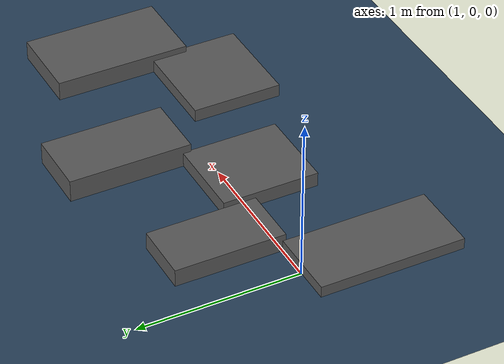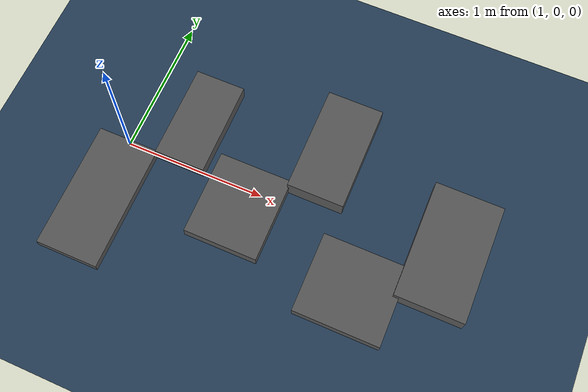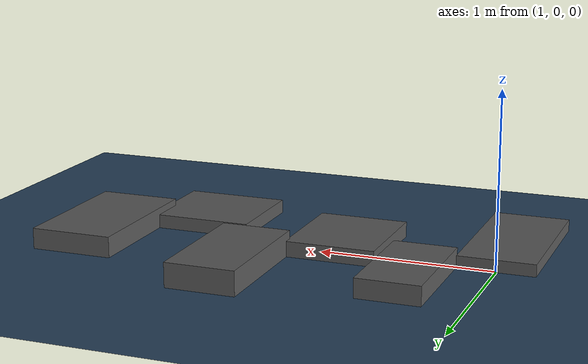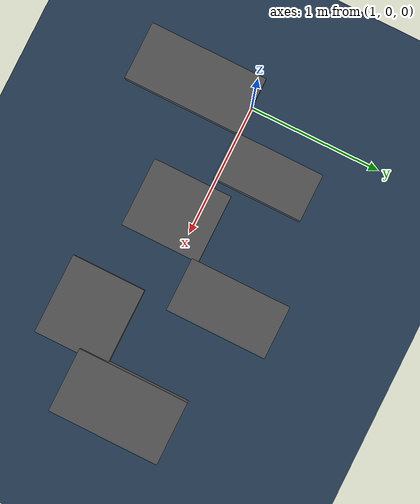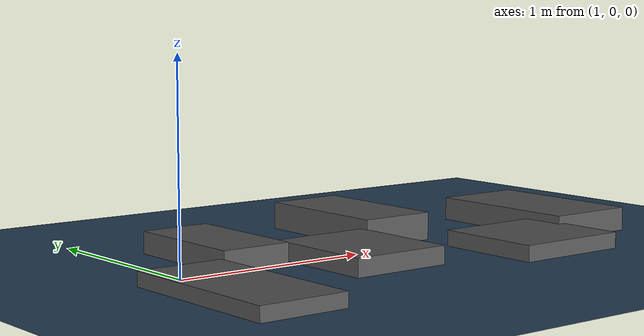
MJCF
<mujoco model="rough_terrain">
  <include file="materials.xml"/>

  <worldbody>
    <light name="key_light" directional="true" diffuse="0.9 0.9 0.9" specular="0.05 0.05 0.05" pos="2 3 4" dir="-0.4 -0.6 -1" castshadow="false" cutoff="255"/>
    <light name="fill_light" directional="true" diffuse="0.6 0.6 0.6" specular="0.02 0.02 0.02" pos="-2 3 3" dir="0.5 -0.5 -1" castshadow="false" cutoff="255"/>
    <light name="rim_light" directional="true" diffuse="0.35 0.35 0.35" specular="0.01 0.01 0.01" pos="0 -4 3" dir="0 0.7 -1" castshadow="false" cutoff="255"/>
    <light name="ambient_fill" directional="false" diffuse="0.4 0.4 0.4" specular="0 0 0" pos="0 0 3" castshadow="false" cutoff="255"/>
    <geom name="floor" size="0 0 0.05" friction="0.75 .1 .1" type="plane" material="groundplane"/>

    <geom name="rough_block_01" type="box" size="0.22 0.45 0.035" pos="1.0 -0.45 0.035" friction="0.9 .1 .1" material="rough_obstacles"/>
    <geom name="rough_block_02" type="box" size="0.18 0.34 0.055" pos="1.4 0.32 0.055" friction="0.9 .1 .1" material="rough_obstacles"/>
    <geom name="rough_block_03" type="box" size="0.26 0.30 0.045" pos="1.9 -0.15 0.045" friction="0.9 .1 .1" material="rough_obstacles"/>
    <geom name="rough_block_04" type="box" size="0.20 0.38 0.070" pos="2.35 0.48 0.070" friction="0.9 .1 .1" material="rough_obstacles"/>
    <geom name="rough_block_05" type="box" size="0.30 0.28 0.040" pos="2.8 -0.38 0.040" friction="0.9 .1 .1" material="rough_obstacles"/>
    <geom name="rough_block_06" type="box" size="0.24 0.42 0.060" pos="3.3 0.10 0.060" friction="0.9 .1 .1" material="rough_obstacles"/>
  </worldbody>
</mujoco>

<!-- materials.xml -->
<mujoco model="scene_materials">
  <asset>
    <texture type="skybox" builtin="flat" rgb1="0 0 0" rgb2="0 0 0" width="512" height="3072"/>

    <texture type="2d" name="groundplane" builtin="checker" mark="edge" rgb1="0.2 0.3 0.4" rgb2="0.1 0.2 0.3" markrgb="0.8 0.8 0.8" width="300" height="300"/>
    <material name="groundplane" texture="groundplane" texuniform="true" texrepeat="5 5" reflectance="0.2"/>

    <material name="rough_obstacles" rgba="0.35 0.35 0.35 1.0"/>
  </asset>
</mujoco>
